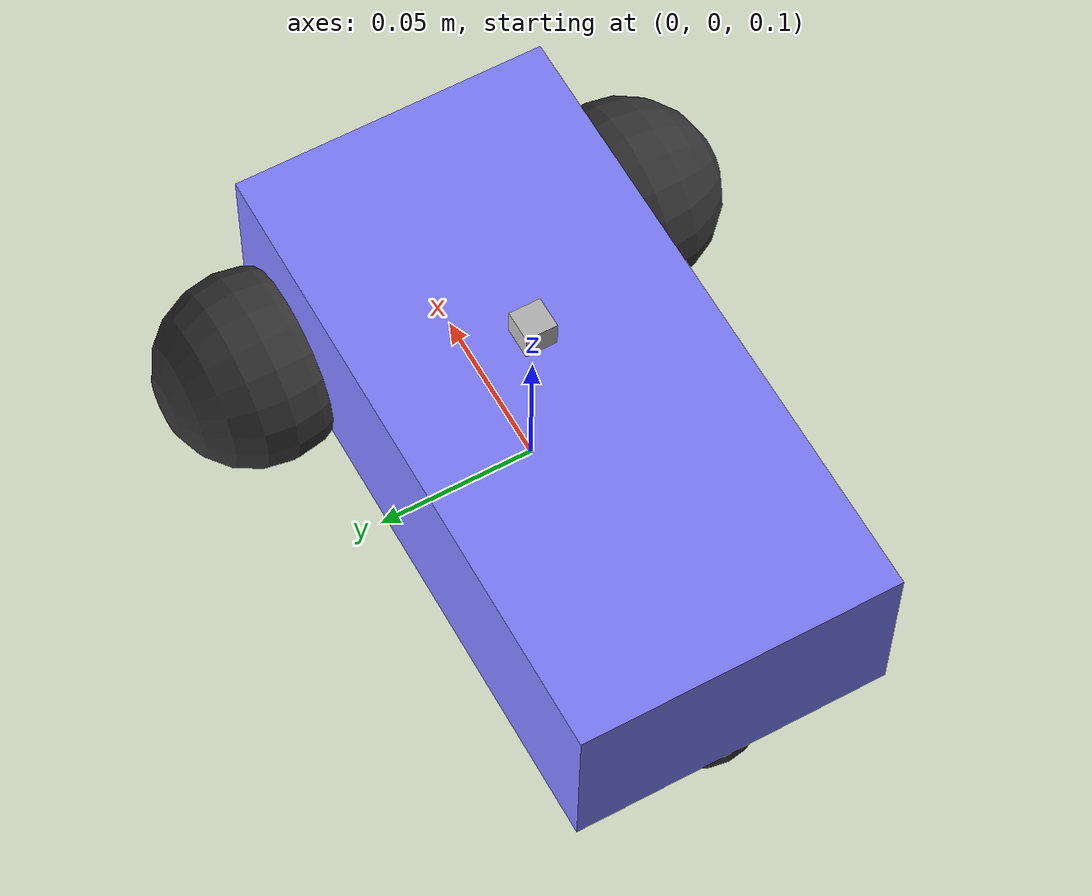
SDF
<?xml version="1.0" ?>
<sdf version="1.6">
  <model name='aama_robot'>
    <pose>0 0 0.12 0 0 0.0</pose>
    <link name='chassis'>
      <pose>-0.0151427 -0 0.0175 0 -0 0</pose>
      <inertial>
        <mass>1.14395</mass>
        <inertia>
          <ixx>0.126164</ixx>
          <ixy>0</ixy>
          <ixz>0</ixz>
          <iyy>0.416519</iyy>
          <iyz>0</iyz>
          <izz>0.481014</izz>
        </inertia>
      </inertial>
      <visual name='visual'>
        <geometry>
          <box>
            <size>0.201142 0.1 0.0568726</size>
          </box>
        </geometry>
        <material>
          <ambient>0.5 0.5 1.0 1</ambient>
          <diffuse>0.5 0.5 1.0 1</diffuse>
          <specular>0.0 0.0 1.0 1</specular>
        </material>
      </visual>
      <collision name='collision'>
        <geometry>
          <box>
            <size>0.201142 0.1 0.0568726</size>
          </box>
        </geometry>
      </collision>
      <sensor name="imu_sensor" type="imu">
        <always_on>1</always_on>
        <update_rate>1</update_rate>
        <visualize>true</visualize>
        <topic>imu</topic>
      </sensor>
    </link>

    <link name="lidar_link">
      <pose>0 0 0.05 0 0 0</pose>
      <inertial>
        <mass>0.1</mass>
        <inertia>
          <ixx>0.000166667</ixx>
          <iyy>0.000166667</iyy>
          <izz>0.000166667</izz>
        </inertia>
      </inertial>
      <collision name="collision">
        <geometry>
          <box>
            <size>0.01 0.01 0.01</size>
          </box>
        </geometry>
      </collision>
      <visual name="visual">
        <geometry>
          <box>
            <size>0.01 0.01 0.01</size>
          </box>
        </geometry>
      </visual>
      <sensor name='gpu_lidar' type='gpu_lidar'>
        <pose>0 0 0 0 0 0</pose>
        <topic>/sonar</topic>
        <update_rate>10</update_rate>
        <lidar>
          <scan>
            <horizontal>
              <samples>1</samples>
              <resolution>1</resolution>
              <min_angle>0</min_angle>
              <max_angle>0</max_angle>
            </horizontal>
          </scan>
          <range>
            <min>0.08</min>
            <max>10.0</max>
            <resolution>0.02</resolution>
          </range>
        </lidar>
        <alwaysOn>1</alwaysOn>
        <visualize>true</visualize>
      </sensor>

      <sensor name="logical_camera" type="logical_camera">
        <topic>/logical_camera</topic>
        <logical_camera>
          <near>0.55</near>
          <far>5.5</far>
          <horizontal_fov>1.3962634</horizontal_fov>
          <aspect_ratio>1</aspect_ratio>
        </logical_camera>
        <visualize>true</visualize>
        <always_on>true</always_on>
        <update_rate>10</update_rate>
      </sensor>
      <sensor name="camera_front" type="camera">
        <pose>0 0 0.2 0 0 0</pose>
        <always_on>1</always_on>
        <update_rate>12</update_rate>
        <camera name="camera_front">
          <horizontal_fov>1.0472</horizontal_fov>
          <image>
              <width>1280</width>
              <height>960</height>
              <format>R8G8B8</format>
          </image>
          <clip>
              <near>0.01</near>
              <far>300</far>
          </clip>
          <topic>camera</topic>
        </camera>
      </sensor>
    </link>

    <link name='left_wheel'>
      <pose>0.0554283 0.0625029 -0.0025 -1.5707 0 0</pose>
      <inertial>
        <mass>2</mass>
        <inertia>
          <ixx>0.145833</ixx>
          <ixy>0</ixy>
          <ixz>0</ixz>
          <iyy>0.145833</iyy>
          <iyz>0</iyz>
          <izz>0.125</izz>
        </inertia>
      </inertial>
      <visual name='visual'>
        <geometry>
          <sphere>
            <radius>0.03</radius>
          </sphere>
        </geometry>
        <material>
          <ambient>0.2 0.2 0.2 1</ambient>
          <diffuse>0.2 0.2 0.2 1</diffuse>
          <specular>0.2 0.2 0.2 1</specular>
        </material>
      </visual>
      <collision name='collision'>
        <geometry>
          <sphere>
            <radius>0.03</radius>
          </sphere>
        </geometry>
      </collision>
    </link>

    <link name='right_wheel'>
      <pose>0.0554282 -0.0625029 -0.0025 -1.5707 0 0</pose>
      <inertial>
        <mass>2</mass>
        <inertia>
          <ixx>0.145833</ixx>
          <ixy>0</ixy>
          <ixz>0</ixz>
          <iyy>0.145833</iyy>
          <iyz>0</iyz>
          <izz>0.125</izz>
        </inertia>
      </inertial>
      <visual name='visual'>
        <geometry>
          <sphere>
            <radius>0.03</radius>
          </sphere>
        </geometry>
        <material>
          <ambient>0.2 0.2 0.2 1</ambient>
          <diffuse>0.2 0.2 0.2 1</diffuse>
          <specular>0.2 0.2 0.2 1</specular>
        </material>
      </visual>
      <collision name='collision'>
        <geometry>
          <sphere>
            <radius>0.03</radius>
          </sphere>
        </geometry>
      </collision>
    </link>

    <link name='caster'>
      <pose>-0.0957138 -0 -0.0125 0 -0 0</pose>
      <inertial>
        <mass>3</mass>
        <inertia>
          <ixx>0.1</ixx>
          <ixy>0</ixy>
          <ixz>0</ixz>
          <iyy>0.1</iyy>
          <iyz>0</iyz>
          <izz>0.1</izz>
        </inertia>
      </inertial>
      <visual name='visual'>
        <geometry>
          <sphere>
            <radius>0.02</radius>
          </sphere>
        </geometry>
        <material>
          <ambient>0.2 0.2 0.2 1</ambient>
          <diffuse>0.2 0.2 0.2 1</diffuse>
          <specular>0.2 0.2 0.2 1</specular>
        </material>
      </visual>
      <collision name='collision'>
        <geometry>
          <sphere>
            <radius>0.02</radius>
          </sphere>
        </geometry>
      </collision>
    </link>

    <joint name='lidar_sensor_joint' type='fixed'>
      <parent>chassis</parent>
      <child>lidar_link</child>
    </joint>

    <joint name='left_wheel_joint' type='revolute'>
      <parent>chassis</parent>
      <child>left_wheel</child>
      <axis>
        <xyz>0 0 1</xyz>
        <limit>
          <lower>-1.79769e+308</lower>
          <upper>1.79769e+308</upper>
        </limit>
      </axis>
    </joint>

    <joint name='right_wheel_joint' type='revolute'>
      <parent>chassis</parent>
      <child>right_wheel</child>
      <axis>
        <xyz>0 0 1</xyz>
        <limit>
          <lower>-1.79769e+308</lower>
          <upper>1.79769e+308</upper>
        </limit>
      </axis>
    </joint>

    <joint name='caster_wheel' type='ball'>
      <parent>chassis</parent>
      <child>caster</child>
    </joint>

    <plugin
      filename="libignition-gazebo-diff-drive-system.so"
      name="ignition::gazebo::systems::DiffDrive"
    >
      <left_joint>left_wheel_joint</left_joint>
      <right_joint>right_wheel_joint</right_joint>
      <wheel_separation>1.25</wheel_separation>
      <wheel_radius>0.3</wheel_radius>
      <odom_publish_frequency>1</odom_publish_frequency>
    </plugin>

    <plugin filename="libignition-gazebo-logical-camera-system.so"
        name="ignition::gazebo::systems::LogicalCamera">
    </plugin>

    <plugin
      filename="ignition-gazebo-imu-system"
      name="ignition::gazebo::systems::Imu">
    </plugin>

    <plugin filename="libignition-gazebo-pose-publisher-system.so"
        name="ignition::gazebo::systems::PosePublisher">
        <publish_link_pose>true</publish_link_pose>
        <publish_sensor_pose>false</publish_sensor_pose>
        <publish_collision_pose>false</publish_collision_pose>
        <publish_visual_pose>false</publish_visual_pose>
        <publish_nested_model_pose>true</publish_nested_model_pose>
        <use_pose_vector_msg>true</use_pose_vector_msg>
        <static_publisher>true</static_publisher>
        <static_update_frequency>30</static_update_frequency>
    </plugin>

  </model>
</sdf>
